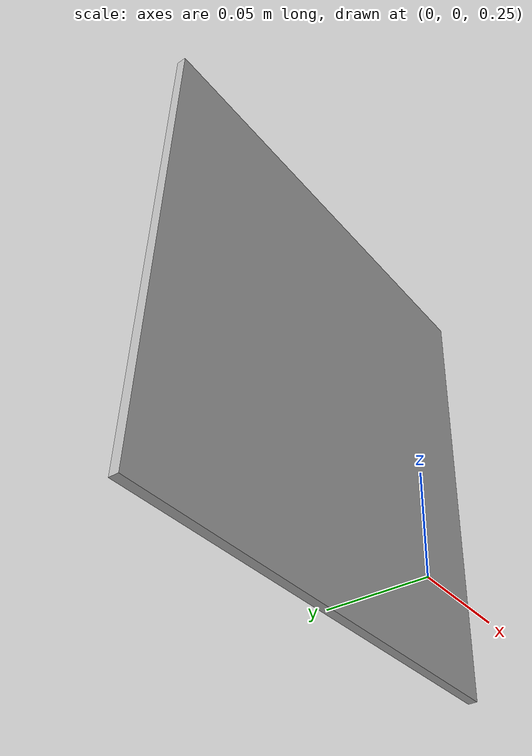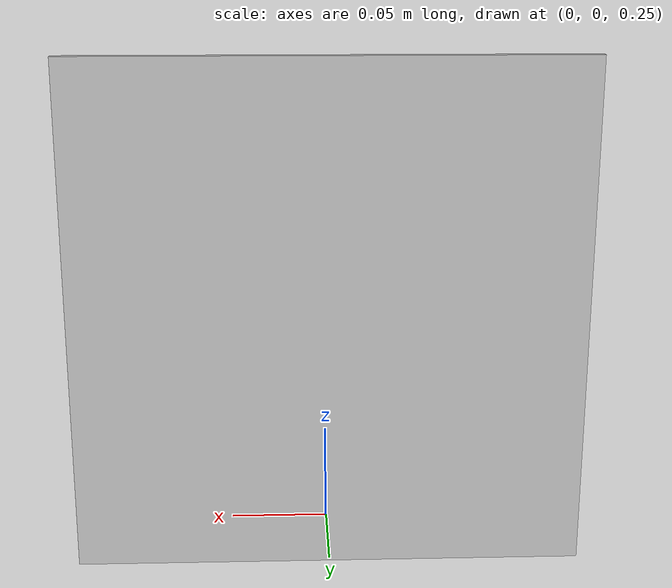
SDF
<?xml version="1.0" ?><sdf version="1.6">
  <model name="tag_03">
    <static>true</static>
    <link name="link">
      <visual name="visual">
        <geometry>
          <mesh>
            <uri>model://ar_tags/tag_03/tag.dae</uri>
          <scale>0.5 0.5 0.5</scale></mesh>
        </geometry>
      </visual>
    <pose>0 0.05 0.25 0 0 1.5707963267948966</pose></link>
  </model>
</sdf>
